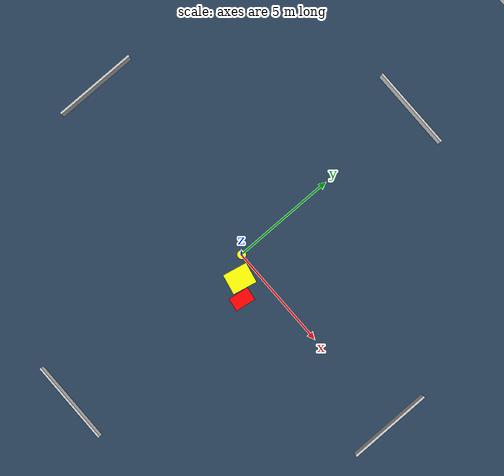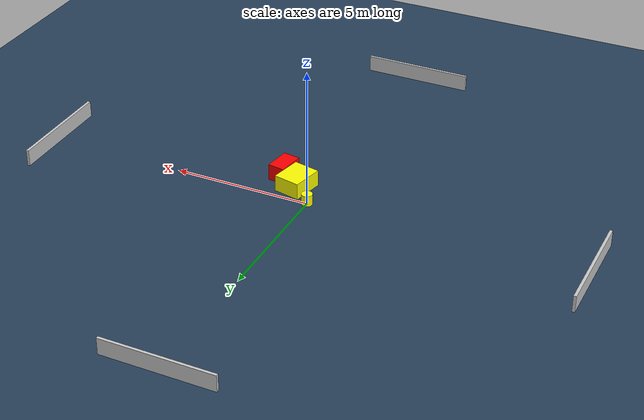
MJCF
<?xml version="1.0" ?>
<mujoco model="generated_environment">
  <option timestep="0.01" integrator="RK4" cone="elliptic"/>
  <default>
    <geom density="1"/>
  </default>
  <asset>
    <texture builtin="gradient" height="3072" name="skybox" rgb1="0.3 0.5 0.7" rgb2="0 0 0" type="skybox" width="512"/>
    <texture builtin="checker" height="300" name="groundplane" rgb1="0.2 0.3 0.4" rgb2="0.1 0.2 0.3" type="2d" width="300"/>
    <material name="groundplane" reflectance="0.2" texrepeat="5 5" texture="groundplane"/>
  </asset>
  <worldbody>
    <light dir="0 0 -1" directional="true" pos="0 0 1.5"/>
    <geom condim="3" friction="0.5 0.005 0.001" material="groundplane" name="floor" pos="0 0 0" size="0 0 0.05" type="plane"/>
    <body name="walls">
      <geom name="wall_1" condim="4" pos="-10.0 0.0 0.3" rgba="0.800000011920929 0.800000011920929 0.800000011920929 1.0" size="0.05 2.0 0.3" type="box"/>
      <geom name="wall_2" condim="4" pos="10.0 0.0 0.3" rgba="0.800000011920929 0.800000011920929 0.800000011920929 1.0" size="0.05 2.0 0.3" type="box"/>
      <geom name="wall_3" condim="4" pos="0.0 -10.0 0.3" rgba="0.800000011920929 0.800000011920929 0.800000011920929 1.0" size="2.0 0.05 0.3" type="box"/>
      <geom name="wall_4" condim="4" pos="0.0 10.0 0.3" rgba="0.800000011920929 0.800000011920929 0.800000011920929 1.0" size="2.0 0.05 0.3" type="box"/>
    </body>
    <body name="robot">
      <joint name="joint_x" type="slide" pos="0 0 0" axis="1 0 0"/>
      <joint name="joint_y" type="slide" pos="0 0 0" axis="0 1 0"/>
      <geom name="robot" type="cylinder" pos="0.0 0.0 0.2" size="0.2 0.2 0.0" mass="5.0" friction="1.0 0.005 0.0001" condim="4" rgba="1.0 1.0 0.0 1.0"/>
    </body>
    <body name="obstacle_1_movable">
      <geom name="obstacle_1_movable" condim="4" pos="0.7598893236137018 -0.7593960133926059 0.3" euler="0 0 167.93216055200782" friction="0.0 0.005 0.001" rgba="1.0 1.0 0.0 1.0" size="0.4846004621886905 0.5828230987225576 0.3" type="box" mass="0.1"/>
      <joint type="free"/>
    </body>
    <body name="obstacle_2_static">
      <geom name="obstacle_2_static" condim="4" pos="1.5083065560179232 -1.2839112659437415 0.3" euler="0 0 81.68245324538981" friction="0.0 0.005 0.001" rgba="1.0 0.0 0.0 1.0" size="0.4817749731113136 0.3123235632733862 0.3" type="box"/>
    </body>
  </worldbody>
  <actuator>
    <motor name="actuator_x" joint="joint_x" gear="1" ctrlrange="-1 1"/>
    <motor name="actuator_y" joint="joint_y" gear="1" ctrlrange="-1 1"/>
  </actuator>
</mujoco>
